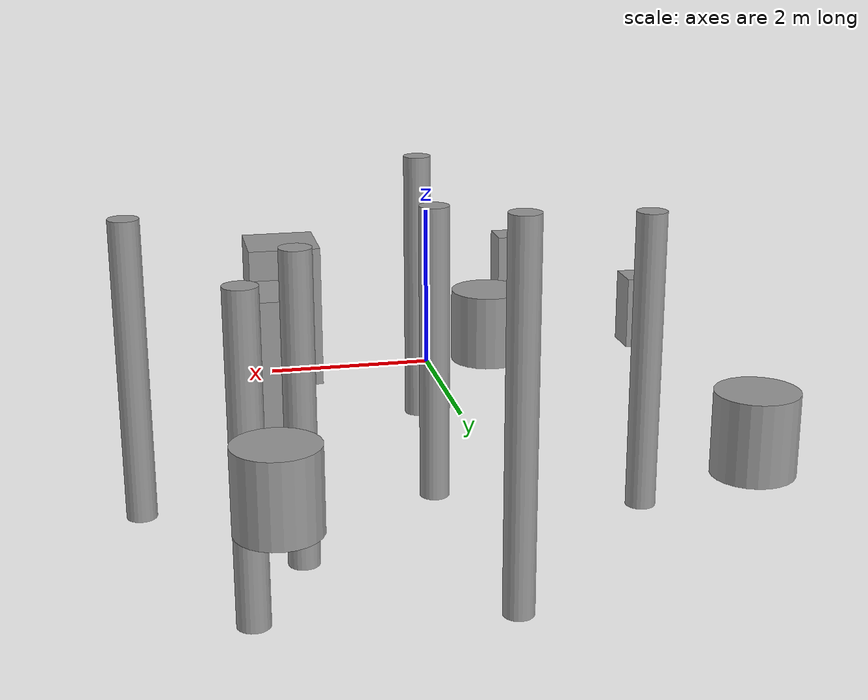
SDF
<?xml version='1.0'?>
<sdf version='1.6'>
  <model name='world3_models'>
    <link name='link_0'>
      <inertial>
        <mass>1</mass>
        <inertia>
          <ixx>0.166667</ixx>
          <ixy>0</ixy>
          <ixz>0</ixz>
          <iyy>0.166667</iyy>
          <iyz>0</iyz>
          <izz>0.166667</izz>
        </inertia>
        <pose frame=''>0 0 0 0 -0 0</pose>
      </inertial>
      <pose frame=''>2.03762 -0.209703 0 0 -0 0</pose>
      <gravity>1</gravity>
      <self_collide>0</self_collide>
      <kinematic>0</kinematic>
      <enable_wind>0</enable_wind>
      <visual name='visual'>
        <pose frame=''>0 0 0 0 -0 0</pose>
        <geometry>
          <box>
            <size>1 1 2</size>
          </box>
        </geometry>
        <material>
          <lighting>1</lighting>
          <script>
            <uri>file://media/materials/scripts/gazebo.material</uri>
            <name>Gazebo/Grey</name>
          </script>
          <shader type='pixel'>
            <normal_map>__default__</normal_map>
          </shader>
          <ambient>0.3 0.3 0.3 1</ambient>
          <diffuse>0.7 0.7 0.7 1</diffuse>
          <specular>0.01 0.01 0.01 1</specular>
          <emissive>0 0 0 1</emissive>
        </material>
        <transparency>0</transparency>
        <cast_shadows>1</cast_shadows>
      </visual>
      <collision name='collision'>
        <laser_retro>0</laser_retro>
        <max_contacts>10</max_contacts>
        <pose frame=''>0 0 0 0 -0 0</pose>
        <geometry>
          <box>
            <size>1 1 2</size>
          </box>
        </geometry>
        <surface>
          <friction>
            <ode>
              <mu>1</mu>
              <mu2>1</mu2>
              <fdir1>0 0 0</fdir1>
              <slip1>0</slip1>
              <slip2>0</slip2>
            </ode>
            <torsional>
              <coefficient>1</coefficient>
              <patch_radius>0</patch_radius>
              <surface_radius>0</surface_radius>
              <use_patch_radius>1</use_patch_radius>
              <ode>
                <slip>0</slip>
              </ode>
            </torsional>
          </friction>
          <bounce>
            <restitution_coefficient>0</restitution_coefficient>
            <threshold>1e+06</threshold>
          </bounce>
          <contact>
            <collide_without_contact>0</collide_without_contact>
            <collide_without_contact_bitmask>1</collide_without_contact_bitmask>
            <collide_bitmask>1</collide_bitmask>
            <ode>
              <soft_cfm>0</soft_cfm>
              <soft_erp>0.2</soft_erp>
              <kp>1e+13</kp>
              <kd>1</kd>
              <max_vel>0.01</max_vel>
              <min_depth>0</min_depth>
            </ode>
            <bullet>
              <split_impulse>1</split_impulse>
              <split_impulse_penetration_threshold>-0.01</split_impulse_penetration_threshold>
              <soft_cfm>0</soft_cfm>
              <soft_erp>0.2</soft_erp>
              <kp>1e+13</kp>
              <kd>1</kd>
            </bullet>
          </contact>
        </surface>
      </collision>
    </link>
    <link name='link_0_clone'>
      <inertial>
        <mass>1</mass>
        <inertia>
          <ixx>0.166667</ixx>
          <ixy>0</ixy>
          <ixz>0</ixz>
          <iyy>0.166667</iyy>
          <iyz>0</iyz>
          <izz>0.166667</izz>
        </inertia>
        <pose frame=''>0 0 0 0 -0 0</pose>
      </inertial>
      <pose frame=''>1.56831 -2.71554 0 0 -0 0</pose>
      <gravity>1</gravity>
      <self_collide>0</self_collide>
      <kinematic>0</kinematic>
      <enable_wind>0</enable_wind>
      <visual name='visual'>
        <pose frame=''>0 0 0 0 -0 0</pose>
        <geometry>
          <box>
            <size>1 1 2</size>
          </box>
        </geometry>
        <material>
          <lighting>1</lighting>
          <script>
            <uri>file://media/materials/scripts/gazebo.material</uri>
            <name>Gazebo/Grey</name>
          </script>
          <shader type='pixel'>
            <normal_map>__default__</normal_map>
          </shader>
          <ambient>0.3 0.3 0.3 1</ambient>
          <diffuse>0.7 0.7 0.7 1</diffuse>
          <specular>0.01 0.01 0.01 1</specular>
          <emissive>0 0 0 1</emissive>
        </material>
        <transparency>0</transparency>
        <cast_shadows>1</cast_shadows>
      </visual>
      <collision name='collision'>
        <laser_retro>0</laser_retro>
        <max_contacts>10</max_contacts>
        <pose frame=''>0 0 0 0 -0 0</pose>
        <geometry>
          <box>
            <size>1 1 2</size>
          </box>
        </geometry>
        <surface>
          <friction>
            <ode>
              <mu>1</mu>
              <mu2>1</mu2>
              <fdir1>0 0 0</fdir1>
              <slip1>0</slip1>
              <slip2>0</slip2>
            </ode>
            <torsional>
              <coefficient>1</coefficient>
              <patch_radius>0</patch_radius>
              <surface_radius>0</surface_radius>
              <use_patch_radius>1</use_patch_radius>
              <ode>
                <slip>0</slip>
              </ode>
            </torsional>
          </friction>
          <bounce>
            <restitution_coefficient>0</restitution_coefficient>
            <threshold>1e+06</threshold>
          </bounce>
          <contact>
            <collide_without_contact>0</collide_without_contact>
            <collide_without_contact_bitmask>1</collide_without_contact_bitmask>
            <collide_bitmask>1</collide_bitmask>
            <ode>
              <soft_cfm>0</soft_cfm>
              <soft_erp>0.2</soft_erp>
              <kp>1e+13</kp>
              <kd>1</kd>
              <max_vel>0.01</max_vel>
              <min_depth>0</min_depth>
            </ode>
            <bullet>
              <split_impulse>1</split_impulse>
              <split_impulse_penetration_threshold>-0.01</split_impulse_penetration_threshold>
              <soft_cfm>0</soft_cfm>
              <soft_erp>0.2</soft_erp>
              <kp>1e+13</kp>
              <kd>1</kd>
            </bullet>
          </contact>
        </surface>
      </collision>
    </link>
    <link name='link_1'>
      <inertial>
        <mass>1</mass>
        <inertia>
          <ixx>0.145833</ixx>
          <ixy>0</ixy>
          <ixz>0</ixz>
          <iyy>0.145833</iyy>
          <iyz>0</iyz>
          <izz>0.125</izz>
        </inertia>
      </inertial>
      <pose frame=''>2.36446 3.79032 0 0 -0 0</pose>
      <visual name='visual'>
        <pose frame=''>0 0 0 0 -0 0</pose>
        <geometry>
          <cylinder>
            <radius>0.5</radius>
            <length>1</length>
          </cylinder>
        </geometry>
        <material>
          <lighting>1</lighting>
          <script>
            <uri>file://media/materials/scripts/gazebo.material</uri>
            <name>Gazebo/Grey</name>
          </script>
          <shader type='pixel'/>
        </material>
        <transparency>0</transparency>
        <cast_shadows>1</cast_shadows>
      </visual>
      <collision name='collision'>
        <laser_retro>0</laser_retro>
        <max_contacts>10</max_contacts>
        <pose frame=''>0 0 0 0 -0 0</pose>
        <geometry>
          <cylinder>
            <radius>0.5</radius>
            <length>1</length>
          </cylinder>
        </geometry>
        <surface>
          <friction>
            <ode>
              <mu>1</mu>
              <mu2>1</mu2>
              <fdir1>0 0 0</fdir1>
              <slip1>0</slip1>
              <slip2>0</slip2>
            </ode>
            <torsional>
              <coefficient>1</coefficient>
              <patch_radius>0</patch_radius>
              <surface_radius>0</surface_radius>
              <use_patch_radius>1</use_patch_radius>
              <ode>
                <slip>0</slip>
              </ode>
            </torsional>
          </friction>
          <bounce>
            <restitution_coefficient>0</restitution_coefficient>
            <threshold>1e+06</threshold>
          </bounce>
          <contact>
            <collide_without_contact>0</collide_without_contact>
            <collide_without_contact_bitmask>1</collide_without_contact_bitmask>
            <collide_bitmask>1</collide_bitmask>
            <ode>
              <soft_cfm>0</soft_cfm>
              <soft_erp>0.2</soft_erp>
              <kp>1e+13</kp>
              <kd>1</kd>
              <max_vel>0.01</max_vel>
              <min_depth>0</min_depth>
            </ode>
            <bullet>
              <split_impulse>1</split_impulse>
              <split_impulse_penetration_threshold>-0.01</split_impulse_penetration_threshold>
              <soft_cfm>0</soft_cfm>
              <soft_erp>0.2</soft_erp>
              <kp>1e+13</kp>
              <kd>1</kd>
            </bullet>
          </contact>
        </surface>
      </collision>
    </link>
    <link name='link_2'>
      <inertial>
        <mass>1</mass>
        <inertia>
          <ixx>0.166667</ixx>
          <ixy>0</ixy>
          <ixz>0</ixz>
          <iyy>0.166667</iyy>
          <iyz>0</iyz>
          <izz>0.166667</izz>
        </inertia>
        <pose frame=''>0 0 0 0 -0 0</pose>
      </inertial>
      <pose frame=''>-3.46569 -1.7273 0 0 -0 0</pose>
      <gravity>1</gravity>
      <self_collide>0</self_collide>
      <kinematic>0</kinematic>
      <enable_wind>0</enable_wind>
      <visual name='visual'>
        <pose frame=''>0 0 0 0 -0 0</pose>
        <geometry>
          <box>
            <size>0.5 0.5 1</size>
          </box>
        </geometry>
        <material>
          <lighting>1</lighting>
          <script>
            <uri>file://media/materials/scripts/gazebo.material</uri>
            <name>Gazebo/Grey</name>
          </script>
          <shader type='pixel'>
            <normal_map>__default__</normal_map>
          </shader>
          <ambient>0.3 0.3 0.3 1</ambient>
          <diffuse>0.7 0.7 0.7 1</diffuse>
          <specular>0.01 0.01 0.01 1</specular>
          <emissive>0 0 0 1</emissive>
        </material>
        <transparency>0</transparency>
        <cast_shadows>1</cast_shadows>
      </visual>
      <collision name='collision'>
        <laser_retro>0</laser_retro>
        <max_contacts>10</max_contacts>
        <pose frame=''>0 0 0 0 -0 0</pose>
        <geometry>
          <box>
            <size>0.5 0.5 1</size>
          </box>
        </geometry>
        <surface>
          <friction>
            <ode>
              <mu>1</mu>
              <mu2>1</mu2>
              <fdir1>0 0 0</fdir1>
              <slip1>0</slip1>
              <slip2>0</slip2>
            </ode>
            <torsional>
              <coefficient>1</coefficient>
              <patch_radius>0</patch_radius>
              <surface_radius>0</surface_radius>
              <use_patch_radius>1</use_patch_radius>
              <ode>
                <slip>0</slip>
              </ode>
            </torsional>
          </friction>
          <bounce>
            <restitution_coefficient>0</restitution_coefficient>
            <threshold>1e+06</threshold>
          </bounce>
          <contact>
            <collide_without_contact>0</collide_without_contact>
            <collide_without_contact_bitmask>1</collide_without_contact_bitmask>
            <collide_bitmask>1</collide_bitmask>
            <ode>
              <soft_cfm>0</soft_cfm>
              <soft_erp>0.2</soft_erp>
              <kp>1e+13</kp>
              <kd>1</kd>
              <max_vel>0.01</max_vel>
              <min_depth>0</min_depth>
            </ode>
            <bullet>
              <split_impulse>1</split_impulse>
              <split_impulse_penetration_threshold>-0.01</split_impulse_penetration_threshold>
              <soft_cfm>0</soft_cfm>
              <soft_erp>0.2</soft_erp>
              <kp>1e+13</kp>
              <kd>1</kd>
            </bullet>
          </contact>
        </surface>
      </collision>
    </link>
    <link name='link_2_clone'>
      <inertial>
        <mass>1</mass>
        <inertia>
          <ixx>0.166667</ixx>
          <ixy>0</ixy>
          <ixz>0</ixz>
          <iyy>0.166667</iyy>
          <iyz>0</iyz>
          <izz>0.166667</izz>
        </inertia>
        <pose frame=''>0 0 0 0 -0 0</pose>
      </inertial>
      <pose frame=''>-2.24781 -4.44688 0 0 -0 0</pose>
      <gravity>1</gravity>
      <self_collide>0</self_collide>
      <kinematic>0</kinematic>
      <enable_wind>0</enable_wind>
      <visual name='visual'>
        <pose frame=''>0 0 0 0 -0 0</pose>
        <geometry>
          <box>
            <size>0.5 0.5 1</size>
          </box>
        </geometry>
        <material>
          <lighting>1</lighting>
          <script>
            <uri>file://media/materials/scripts/gazebo.material</uri>
            <name>Gazebo/Grey</name>
          </script>
          <shader type='pixel'>
            <normal_map>__default__</normal_map>
          </shader>
          <ambient>0.3 0.3 0.3 1</ambient>
          <diffuse>0.7 0.7 0.7 1</diffuse>
          <specular>0.01 0.01 0.01 1</specular>
          <emissive>0 0 0 1</emissive>
        </material>
        <transparency>0</transparency>
        <cast_shadows>1</cast_shadows>
      </visual>
      <collision name='collision'>
        <laser_retro>0</laser_retro>
        <max_contacts>10</max_contacts>
        <pose frame=''>0 0 0 0 -0 0</pose>
        <geometry>
          <box>
            <size>0.5 0.5 1</size>
          </box>
        </geometry>
        <surface>
          <friction>
            <ode>
              <mu>1</mu>
              <mu2>1</mu2>
              <fdir1>0 0 0</fdir1>
              <slip1>0</slip1>
              <slip2>0</slip2>
            </ode>
            <torsional>
              <coefficient>1</coefficient>
              <patch_radius>0</patch_radius>
              <surface_radius>0</surface_radius>
              <use_patch_radius>1</use_patch_radius>
              <ode>
                <slip>0</slip>
              </ode>
            </torsional>
          </friction>
          <bounce>
            <restitution_coefficient>0</restitution_coefficient>
            <threshold>1e+06</threshold>
          </bounce>
          <contact>
            <collide_without_contact>0</collide_without_contact>
            <collide_without_contact_bitmask>1</collide_without_contact_bitmask>
            <collide_bitmask>1</collide_bitmask>
            <ode>
              <soft_cfm>0</soft_cfm>
              <soft_erp>0.2</soft_erp>
              <kp>1e+13</kp>
              <kd>1</kd>
              <max_vel>0.01</max_vel>
              <min_depth>0</min_depth>
            </ode>
            <bullet>
              <split_impulse>1</split_impulse>
              <split_impulse_penetration_threshold>-0.01</split_impulse_penetration_threshold>
              <soft_cfm>0</soft_cfm>
              <soft_erp>0.2</soft_erp>
              <kp>1e+13</kp>
              <kd>1</kd>
            </bullet>
          </contact>
        </surface>
      </collision>
    </link>
    <link name='link_3'>
      <inertial>
        <mass>1</mass>
        <inertia>
          <ixx>0.145833</ixx>
          <ixy>0</ixy>
          <ixz>0</ixz>
          <iyy>0.145833</iyy>
          <iyz>0</iyz>
          <izz>0.125</izz>
        </inertia>
        <pose frame=''>0 0 0 0 -0 0</pose>
      </inertial>
      <pose frame=''>-0.643323 2.40713 0 0 -0 0</pose>
      <gravity>1</gravity>
      <self_collide>0</self_collide>
      <kinematic>0</kinematic>
      <enable_wind>0</enable_wind>
      <visual name='visual'>
        <pose frame=''>0 0 0 0 -0 0</pose>
        <geometry>
          <cylinder>
            <radius>0.2</radius>
            <length>5</length>
          </cylinder>
        </geometry>
        <material>
          <lighting>1</lighting>
          <script>
            <uri>file://media/materials/scripts/gazebo.material</uri>
            <name>Gazebo/Grey</name>
          </script>
          <shader type='pixel'>
            <normal_map>__default__</normal_map>
          </shader>
          <ambient>0.3 0.3 0.3 1</ambient>
          <diffuse>0.7 0.7 0.7 1</diffuse>
          <specular>0.01 0.01 0.01 1</specular>
          <emissive>0 0 0 1</emissive>
        </material>
        <transparency>0</transparency>
        <cast_shadows>1</cast_shadows>
      </visual>
      <collision name='collision'>
        <laser_retro>0</laser_retro>
        <max_contacts>10</max_contacts>
        <pose frame=''>0 0 0 0 -0 0</pose>
        <geometry>
          <cylinder>
            <radius>0.2</radius>
            <length>5</length>
          </cylinder>
        </geometry>
        <surface>
          <friction>
            <ode>
              <mu>1</mu>
              <mu2>1</mu2>
              <fdir1>0 0 0</fdir1>
              <slip1>0</slip1>
              <slip2>0</slip2>
            </ode>
            <torsional>
              <coefficient>1</coefficient>
              <patch_radius>0</patch_radius>
              <surface_radius>0</surface_radius>
              <use_patch_radius>1</use_patch_radius>
              <ode>
                <slip>0</slip>
              </ode>
            </torsional>
          </friction>
          <bounce>
            <restitution_coefficient>0</restitution_coefficient>
            <threshold>1e+06</threshold>
          </bounce>
          <contact>
            <collide_without_contact>0</collide_without_contact>
            <collide_without_contact_bitmask>1</collide_without_contact_bitmask>
            <collide_bitmask>1</collide_bitmask>
            <ode>
              <soft_cfm>0</soft_cfm>
              <soft_erp>0.2</soft_erp>
              <kp>1e+13</kp>
              <kd>1</kd>
              <max_vel>0.01</max_vel>
              <min_depth>0</min_depth>
            </ode>
            <bullet>
              <split_impulse>1</split_impulse>
              <split_impulse_penetration_threshold>-0.01</split_impulse_penetration_threshold>
              <soft_cfm>0</soft_cfm>
              <soft_erp>0.2</soft_erp>
              <kp>1e+13</kp>
              <kd>1</kd>
            </bullet>
          </contact>
        </surface>
      </collision>
    </link>
    <link name='link_4'>
      <inertial>
        <mass>1</mass>
        <inertia>
          <ixx>0.145833</ixx>
          <ixy>0</ixy>
          <ixz>0</ixz>
          <iyy>0.145833</iyy>
          <iyz>0</iyz>
          <izz>0.125</izz>
        </inertia>
        <pose frame=''>0 0 0 0 -0 0</pose>
      </inertial>
      <pose frame=''>1.84352 1.49813 0 0 -0 0</pose>
      <gravity>1</gravity>
      <self_collide>0</self_collide>
      <kinematic>0</kinematic>
      <enable_wind>0</enable_wind>
      <visual name='visual'>
        <pose frame=''>0 0 0 0 -0 0</pose>
        <geometry>
          <cylinder>
            <radius>0.2</radius>
            <length>4</length>
          </cylinder>
        </geometry>
        <material>
          <lighting>1</lighting>
          <script>
            <uri>file://media/materials/scripts/gazebo.material</uri>
            <name>Gazebo/Grey</name>
          </script>
          <shader type='pixel'>
            <normal_map>__default__</normal_map>
          </shader>
          <ambient>0.3 0.3 0.3 1</ambient>
          <diffuse>0.7 0.7 0.7 1</diffuse>
          <specular>0.01 0.01 0.01 1</specular>
          <emissive>0 0 0 1</emissive>
        </material>
        <transparency>0</transparency>
        <cast_shadows>1</cast_shadows>
      </visual>
      <collision name='collision'>
        <laser_retro>0</laser_retro>
        <max_contacts>10</max_contacts>
        <pose frame=''>0 0 0 0 -0 0</pose>
        <geometry>
          <cylinder>
            <radius>0.2</radius>
            <length>4</length>
          </cylinder>
        </geometry>
        <surface>
          <friction>
            <ode>
              <mu>1</mu>
              <mu2>1</mu2>
              <fdir1>0 0 0</fdir1>
              <slip1>0</slip1>
              <slip2>0</slip2>
            </ode>
            <torsional>
              <coefficient>1</coefficient>
              <patch_radius>0</patch_radius>
              <surface_radius>0</surface_radius>
              <use_patch_radius>1</use_patch_radius>
              <ode>
                <slip>0</slip>
              </ode>
            </torsional>
          </friction>
          <bounce>
            <restitution_coefficient>0</restitution_coefficient>
            <threshold>1e+06</threshold>
          </bounce>
          <contact>
            <collide_without_contact>0</collide_without_contact>
            <collide_without_contact_bitmask>1</collide_without_contact_bitmask>
            <collide_bitmask>1</collide_bitmask>
            <ode>
              <soft_cfm>0</soft_cfm>
              <soft_erp>0.2</soft_erp>
              <kp>1e+13</kp>
              <kd>1</kd>
              <max_vel>0.01</max_vel>
              <min_depth>0</min_depth>
            </ode>
            <bullet>
              <split_impulse>1</split_impulse>
              <split_impulse_penetration_threshold>-0.01</split_impulse_penetration_threshold>
              <soft_cfm>0</soft_cfm>
              <soft_erp>0.2</soft_erp>
              <kp>1e+13</kp>
              <kd>1</kd>
            </bullet>
          </contact>
        </surface>
      </collision>
    </link>
    <link name='link_4_clone'>
      <inertial>
        <mass>1</mass>
        <inertia>
          <ixx>0.145833</ixx>
          <ixy>0</ixy>
          <ixz>0</ixz>
          <iyy>0.145833</iyy>
          <iyz>0</iyz>
          <izz>0.125</izz>
        </inertia>
        <pose frame=''>0 0 0 0 -0 0</pose>
      </inertial>
      <pose frame=''>3.74918 -0.332965 0 0 -0 0</pose>
      <gravity>1</gravity>
      <self_collide>0</self_collide>
      <kinematic>0</kinematic>
      <enable_wind>0</enable_wind>
      <visual name='visual'>
        <pose frame=''>0 0 0 0 -0 0</pose>
        <geometry>
          <cylinder>
            <radius>0.2</radius>
            <length>4</length>
          </cylinder>
        </geometry>
        <material>
          <lighting>1</lighting>
          <script>
            <uri>file://media/materials/scripts/gazebo.material</uri>
            <name>Gazebo/Grey</name>
          </script>
          <shader type='pixel'>
            <normal_map>__default__</normal_map>
          </shader>
          <ambient>0.3 0.3 0.3 1</ambient>
          <diffuse>0.7 0.7 0.7 1</diffuse>
          <specular>0.01 0.01 0.01 1</specular>
          <emissive>0 0 0 1</emissive>
        </material>
        <transparency>0</transparency>
        <cast_shadows>1</cast_shadows>
      </visual>
      <collision name='collision'>
        <laser_retro>0</laser_retro>
        <max_contacts>10</max_contacts>
        <pose frame=''>0 0 0 0 -0 0</pose>
        <geometry>
          <cylinder>
            <radius>0.2</radius>
            <length>4</length>
          </cylinder>
        </geometry>
        <surface>
          <friction>
            <ode>
              <mu>1</mu>
              <mu2>1</mu2>
              <fdir1>0 0 0</fdir1>
              <slip1>0</slip1>
              <slip2>0</slip2>
            </ode>
            <torsional>
              <coefficient>1</coefficient>
              <patch_radius>0</patch_radius>
              <surface_radius>0</surface_radius>
              <use_patch_radius>1</use_patch_radius>
              <ode>
                <slip>0</slip>
              </ode>
            </torsional>
          </friction>
          <bounce>
            <restitution_coefficient>0</restitution_coefficient>
            <threshold>1e+06</threshold>
          </bounce>
          <contact>
            <collide_without_contact>0</collide_without_contact>
            <collide_without_contact_bitmask>1</collide_without_contact_bitmask>
            <collide_bitmask>1</collide_bitmask>
            <ode>
              <soft_cfm>0</soft_cfm>
              <soft_erp>0.2</soft_erp>
              <kp>1e+13</kp>
              <kd>1</kd>
              <max_vel>0.01</max_vel>
              <min_depth>0</min_depth>
            </ode>
            <bullet>
              <split_impulse>1</split_impulse>
              <split_impulse_penetration_threshold>-0.01</split_impulse_penetration_threshold>
              <soft_cfm>0</soft_cfm>
              <soft_erp>0.2</soft_erp>
              <kp>1e+13</kp>
              <kd>1</kd>
            </bullet>
          </contact>
        </surface>
      </collision>
    </link>
    <link name='link_4_clone_0'>
      <inertial>
        <mass>1</mass>
        <inertia>
          <ixx>0.145833</ixx>
          <ixy>0</ixy>
          <ixz>0</ixz>
          <iyy>0.145833</iyy>
          <iyz>0</iyz>
          <izz>0.125</izz>
        </inertia>
        <pose frame=''>0 0 0 0 -0 0</pose>
      </inertial>
      <pose frame=''>-0.153038 -0.252231 0 0 -0 0</pose>
      <gravity>1</gravity>
      <self_collide>0</self_collide>
      <kinematic>0</kinematic>
      <enable_wind>0</enable_wind>
      <visual name='visual'>
        <pose frame=''>0 0 0 0 -0 0</pose>
        <geometry>
          <cylinder>
            <radius>0.2</radius>
            <length>4</length>
          </cylinder>
        </geometry>
        <material>
          <lighting>1</lighting>
          <script>
            <uri>file://media/materials/scripts/gazebo.material</uri>
            <name>Gazebo/Grey</name>
          </script>
          <shader type='pixel'>
            <normal_map>__default__</normal_map>
          </shader>
          <ambient>0.3 0.3 0.3 1</ambient>
          <diffuse>0.7 0.7 0.7 1</diffuse>
          <specular>0.01 0.01 0.01 1</specular>
          <emissive>0 0 0 1</emissive>
        </material>
        <transparency>0</transparency>
        <cast_shadows>1</cast_shadows>
      </visual>
      <collision name='collision'>
        <laser_retro>0</laser_retro>
        <max_contacts>10</max_contacts>
        <pose frame=''>0 0 0 0 -0 0</pose>
        <geometry>
          <cylinder>
            <radius>0.2</radius>
            <length>4</length>
          </cylinder>
        </geometry>
        <surface>
          <friction>
            <ode>
              <mu>1</mu>
              <mu2>1</mu2>
              <fdir1>0 0 0</fdir1>
              <slip1>0</slip1>
              <slip2>0</slip2>
            </ode>
            <torsional>
              <coefficient>1</coefficient>
              <patch_radius>0</patch_radius>
              <surface_radius>0</surface_radius>
              <use_patch_radius>1</use_patch_radius>
              <ode>
                <slip>0</slip>
              </ode>
            </torsional>
          </friction>
          <bounce>
            <restitution_coefficient>0</restitution_coefficient>
            <threshold>1e+06</threshold>
          </bounce>
          <contact>
            <collide_without_contact>0</collide_without_contact>
            <collide_without_contact_bitmask>1</collide_without_contact_bitmask>
            <collide_bitmask>1</collide_bitmask>
            <ode>
              <soft_cfm>0</soft_cfm>
              <soft_erp>0.2</soft_erp>
              <kp>1e+13</kp>
              <kd>1</kd>
              <max_vel>0.01</max_vel>
              <min_depth>0</min_depth>
            </ode>
            <bullet>
              <split_impulse>1</split_impulse>
              <split_impulse_penetration_threshold>-0.01</split_impulse_penetration_threshold>
              <soft_cfm>0</soft_cfm>
              <soft_erp>0.2</soft_erp>
              <kp>1e+13</kp>
              <kd>1</kd>
            </bullet>
          </contact>
        </surface>
      </collision>
    </link>
    <link name='link_4_clone_1'>
      <inertial>
        <mass>1</mass>
        <inertia>
          <ixx>0.145833</ixx>
          <ixy>0</ixy>
          <ixz>0</ixz>
          <iyy>0.145833</iyy>
          <iyz>0</iyz>
          <izz>0.125</izz>
        </inertia>
        <pose frame=''>0 0 0 0 -0 0</pose>
      </inertial>
      <pose frame=''>-2.77777 0.619177 0 0 -0 0</pose>
      <gravity>1</gravity>
      <self_collide>0</self_collide>
      <kinematic>0</kinematic>
      <enable_wind>0</enable_wind>
      <visual name='visual'>
        <pose frame=''>0 0 0 0 -0 0</pose>
        <geometry>
          <cylinder>
            <radius>0.2</radius>
            <length>4</length>
          </cylinder>
        </geometry>
        <material>
          <lighting>1</lighting>
          <script>
            <uri>file://media/materials/scripts/gazebo.material</uri>
            <name>Gazebo/Grey</name>
          </script>
          <shader type='pixel'>
            <normal_map>__default__</normal_map>
          </shader>
          <ambient>0.3 0.3 0.3 1</ambient>
          <diffuse>0.7 0.7 0.7 1</diffuse>
          <specular>0.01 0.01 0.01 1</specular>
          <emissive>0 0 0 1</emissive>
        </material>
        <transparency>0</transparency>
        <cast_shadows>1</cast_shadows>
      </visual>
      <collision name='collision'>
        <laser_retro>0</laser_retro>
        <max_contacts>10</max_contacts>
        <pose frame=''>0 0 0 0 -0 0</pose>
        <geometry>
          <cylinder>
            <radius>0.2</radius>
            <length>4</length>
          </cylinder>
        </geometry>
        <surface>
          <friction>
            <ode>
              <mu>1</mu>
              <mu2>1</mu2>
              <fdir1>0 0 0</fdir1>
              <slip1>0</slip1>
              <slip2>0</slip2>
            </ode>
            <torsional>
              <coefficient>1</coefficient>
              <patch_radius>0</patch_radius>
              <surface_radius>0</surface_radius>
              <use_patch_radius>1</use_patch_radius>
              <ode>
                <slip>0</slip>
              </ode>
            </torsional>
          </friction>
          <bounce>
            <restitution_coefficient>0</restitution_coefficient>
            <threshold>1e+06</threshold>
          </bounce>
          <contact>
            <collide_without_contact>0</collide_without_contact>
            <collide_without_contact_bitmask>1</collide_without_contact_bitmask>
            <collide_bitmask>1</collide_bitmask>
            <ode>
              <soft_cfm>0</soft_cfm>
              <soft_erp>0.2</soft_erp>
              <kp>1e+13</kp>
              <kd>1</kd>
              <max_vel>0.01</max_vel>
              <min_depth>0</min_depth>
            </ode>
            <bullet>
              <split_impulse>1</split_impulse>
              <split_impulse_penetration_threshold>-0.01</split_impulse_penetration_threshold>
              <soft_cfm>0</soft_cfm>
              <soft_erp>0.2</soft_erp>
              <kp>1e+13</kp>
              <kd>1</kd>
            </bullet>
          </contact>
        </surface>
      </collision>
    </link>
    <link name='link_4_clone_2'>
      <inertial>
        <mass>1</mass>
        <inertia>
          <ixx>0.145833</ixx>
          <ixy>0</ixy>
          <ixz>0</ixz>
          <iyy>0.145833</iyy>
          <iyz>0</iyz>
          <izz>0.125</izz>
        </inertia>
        <pose frame=''>0 0 0 0 -0 0</pose>
      </inertial>
      <pose frame=''>-0.559921 -3.47003 0 0 -0 0</pose>
      <gravity>1</gravity>
      <self_collide>0</self_collide>
      <kinematic>0</kinematic>
      <enable_wind>0</enable_wind>
      <visual name='visual'>
        <pose frame=''>0 0 0 0 -0 0</pose>
        <geometry>
          <cylinder>
            <radius>0.2</radius>
            <length>4</length>
          </cylinder>
        </geometry>
        <material>
          <lighting>1</lighting>
          <script>
            <uri>file://media/materials/scripts/gazebo.material</uri>
            <name>Gazebo/Grey</name>
          </script>
          <shader type='pixel'>
            <normal_map>__default__</normal_map>
          </shader>
          <ambient>0.3 0.3 0.3 1</ambient>
          <diffuse>0.7 0.7 0.7 1</diffuse>
          <specular>0.01 0.01 0.01 1</specular>
          <emissive>0 0 0 1</emissive>
        </material>
        <transparency>0</transparency>
        <cast_shadows>1</cast_shadows>
      </visual>
      <collision name='collision'>
        <laser_retro>0</laser_retro>
        <max_contacts>10</max_contacts>
        <pose frame=''>0 0 0 0 -0 0</pose>
        <geometry>
          <cylinder>
            <radius>0.2</radius>
            <length>4</length>
          </cylinder>
        </geometry>
        <surface>
          <friction>
            <ode>
              <mu>1</mu>
              <mu2>1</mu2>
              <fdir1>0 0 0</fdir1>
              <slip1>0</slip1>
              <slip2>0</slip2>
            </ode>
            <torsional>
              <coefficient>1</coefficient>
              <patch_radius>0</patch_radius>
              <surface_radius>0</surface_radius>
              <use_patch_radius>1</use_patch_radius>
              <ode>
                <slip>0</slip>
              </ode>
            </torsional>
          </friction>
          <bounce>
            <restitution_coefficient>0</restitution_coefficient>
            <threshold>1e+06</threshold>
          </bounce>
          <contact>
            <collide_without_contact>0</collide_without_contact>
            <collide_without_contact_bitmask>1</collide_without_contact_bitmask>
            <collide_bitmask>1</collide_bitmask>
            <ode>
              <soft_cfm>0</soft_cfm>
              <soft_erp>0.2</soft_erp>
              <kp>1e+13</kp>
              <kd>1</kd>
              <max_vel>0.01</max_vel>
              <min_depth>0</min_depth>
            </ode>
            <bullet>
              <split_impulse>1</split_impulse>
              <split_impulse_penetration_threshold>-0.01</split_impulse_penetration_threshold>
              <soft_cfm>0</soft_cfm>
              <soft_erp>0.2</soft_erp>
              <kp>1e+13</kp>
              <kd>1</kd>
            </bullet>
          </contact>
        </surface>
      </collision>
    </link>
    <link name='link_4_clone_3'>
      <inertial>
        <mass>1</mass>
        <inertia>
          <ixx>0.145833</ixx>
          <ixy>0</ixy>
          <ixz>0</ixz>
          <iyy>0.145833</iyy>
          <iyz>0</iyz>
          <izz>0.125</izz>
        </inertia>
        <pose frame=''>0 0 0 0 -0 0</pose>
      </inertial>
      <pose frame=''>2.60597 2.97966 0 0 -0 0</pose>
      <gravity>1</gravity>
      <self_collide>0</self_collide>
      <kinematic>0</kinematic>
      <enable_wind>0</enable_wind>
      <visual name='visual'>
        <pose frame=''>0 0 0 0 -0 0</pose>
        <geometry>
          <cylinder>
            <radius>0.2</radius>
            <length>4</length>
          </cylinder>
        </geometry>
        <material>
          <lighting>1</lighting>
          <script>
            <uri>file://media/materials/scripts/gazebo.material</uri>
            <name>Gazebo/Grey</name>
          </script>
          <shader type='pixel'>
            <normal_map>__default__</normal_map>
          </shader>
          <ambient>0.3 0.3 0.3 1</ambient>
          <diffuse>0.7 0.7 0.7 1</diffuse>
          <specular>0.01 0.01 0.01 1</specular>
          <emissive>0 0 0 1</emissive>
        </material>
        <transparency>0</transparency>
        <cast_shadows>1</cast_shadows>
      </visual>
      <collision name='collision'>
        <laser_retro>0</laser_retro>
        <max_contacts>10</max_contacts>
        <pose frame=''>0 0 0 0 -0 0</pose>
        <geometry>
          <cylinder>
            <radius>0.2</radius>
            <length>4</length>
          </cylinder>
        </geometry>
        <surface>
          <friction>
            <ode>
              <mu>1</mu>
              <mu2>1</mu2>
              <fdir1>0 0 0</fdir1>
              <slip1>0</slip1>
              <slip2>0</slip2>
            </ode>
            <torsional>
              <coefficient>1</coefficient>
              <patch_radius>0</patch_radius>
              <surface_radius>0</surface_radius>
              <use_patch_radius>1</use_patch_radius>
              <ode>
                <slip>0</slip>
              </ode>
            </torsional>
          </friction>
          <bounce>
            <restitution_coefficient>0</restitution_coefficient>
            <threshold>1e+06</threshold>
          </bounce>
          <contact>
            <collide_without_contact>0</collide_without_contact>
            <collide_without_contact_bitmask>1</collide_without_contact_bitmask>
            <collide_bitmask>1</collide_bitmask>
            <ode>
              <soft_cfm>0</soft_cfm>
              <soft_erp>0.2</soft_erp>
              <kp>1e+13</kp>
              <kd>1</kd>
              <max_vel>0.01</max_vel>
              <min_depth>0</min_depth>
            </ode>
            <bullet>
              <split_impulse>1</split_impulse>
              <split_impulse_penetration_threshold>-0.01</split_impulse_penetration_threshold>
              <soft_cfm>0</soft_cfm>
              <soft_erp>0.2</soft_erp>
              <kp>1e+13</kp>
              <kd>1</kd>
            </bullet>
          </contact>
        </surface>
      </collision>
    </link>
    <link name='link_5'>
      <inertial>
        <mass>1</mass>
        <inertia>
          <ixx>0.145833</ixx>
          <ixy>0</ixy>
          <ixz>0</ixz>
          <iyy>0.145833</iyy>
          <iyz>0</iyz>
          <izz>0.125</izz>
        </inertia>
      </inertial>
      <pose frame=''>-3.17226 3.28552 0 0 -0 0</pose>
      <visual name='visual'>
        <pose frame=''>0 0 0 0 -0 0</pose>
        <geometry>
          <cylinder>
            <radius>0.5</radius>
            <length>1</length>
          </cylinder>
        </geometry>
        <material>
          <lighting>1</lighting>
          <script>
            <uri>file://media/materials/scripts/gazebo.material</uri>
            <name>Gazebo/Grey</name>
          </script>
          <shader type='pixel'/>
        </material>
        <transparency>0</transparency>
        <cast_shadows>1</cast_shadows>
      </visual>
      <collision name='collision'>
        <laser_retro>0</laser_retro>
        <max_contacts>10</max_contacts>
        <pose frame=''>0 0 0 0 -0 0</pose>
        <geometry>
          <cylinder>
            <radius>0.5</radius>
            <length>1</length>
          </cylinder>
        </geometry>
        <surface>
          <friction>
            <ode>
              <mu>1</mu>
              <mu2>1</mu2>
              <fdir1>0 0 0</fdir1>
              <slip1>0</slip1>
              <slip2>0</slip2>
            </ode>
            <torsional>
              <coefficient>1</coefficient>
              <patch_radius>0</patch_radius>
              <surface_radius>0</surface_radius>
              <use_patch_radius>1</use_patch_radius>
              <ode>
                <slip>0</slip>
              </ode>
            </torsional>
          </friction>
          <bounce>
            <restitution_coefficient>0</restitution_coefficient>
            <threshold>1e+06</threshold>
          </bounce>
          <contact>
            <collide_without_contact>0</collide_without_contact>
            <collide_without_contact_bitmask>1</collide_without_contact_bitmask>
            <collide_bitmask>1</collide_bitmask>
            <ode>
              <soft_cfm>0</soft_cfm>
              <soft_erp>0.2</soft_erp>
              <kp>1e+13</kp>
              <kd>1</kd>
              <max_vel>0.01</max_vel>
              <min_depth>0</min_depth>
            </ode>
            <bullet>
              <split_impulse>1</split_impulse>
              <split_impulse_penetration_threshold>-0.01</split_impulse_penetration_threshold>
              <soft_cfm>0</soft_cfm>
              <soft_erp>0.2</soft_erp>
              <kp>1e+13</kp>
              <kd>1</kd>
            </bullet>
          </contact>
        </surface>
      </collision>
    </link>
    <link name='link_6'>
      <inertial>
        <mass>1</mass>
        <inertia>
          <ixx>0.145833</ixx>
          <ixy>0</ixy>
          <ixz>0</ixz>
          <iyy>0.145833</iyy>
          <iyz>0</iyz>
          <izz>0.125</izz>
        </inertia>
      </inertial>
      <pose frame=''>-1.14924 -1.42531 0 0 -0 0</pose>
      <visual name='visual'>
        <pose frame=''>0 0 0 0 -0 0</pose>
        <geometry>
          <cylinder>
            <radius>0.5</radius>
            <length>1</length>
          </cylinder>
        </geometry>
        <material>
          <lighting>1</lighting>
          <script>
            <uri>file://media/materials/scripts/gazebo.material</uri>
            <name>Gazebo/Grey</name>
          </script>
          <shader type='pixel'/>
        </material>
        <transparency>0</transparency>
        <cast_shadows>1</cast_shadows>
      </visual>
      <collision name='collision'>
        <laser_retro>0</laser_retro>
        <max_contacts>10</max_contacts>
        <pose frame=''>0 0 0 0 -0 0</pose>
        <geometry>
          <cylinder>
            <radius>0.5</radius>
            <length>1</length>
          </cylinder>
        </geometry>
        <surface>
          <friction>
            <ode>
              <mu>1</mu>
              <mu2>1</mu2>
              <fdir1>0 0 0</fdir1>
              <slip1>0</slip1>
              <slip2>0</slip2>
            </ode>
            <torsional>
              <coefficient>1</coefficient>
              <patch_radius>0</patch_radius>
              <surface_radius>0</surface_radius>
              <use_patch_radius>1</use_patch_radius>
              <ode>
                <slip>0</slip>
              </ode>
            </torsional>
          </friction>
          <bounce>
            <restitution_coefficient>0</restitution_coefficient>
            <threshold>1e+06</threshold>
          </bounce>
          <contact>
            <collide_without_contact>0</collide_without_contact>
            <collide_without_contact_bitmask>1</collide_without_contact_bitmask>
            <collide_bitmask>1</collide_bitmask>
            <ode>
              <soft_cfm>0</soft_cfm>
              <soft_erp>0.2</soft_erp>
              <kp>1e+13</kp>
              <kd>1</kd>
              <max_vel>0.01</max_vel>
              <min_depth>0</min_depth>
            </ode>
            <bullet>
              <split_impulse>1</split_impulse>
              <split_impulse_penetration_threshold>-0.01</split_impulse_penetration_threshold>
              <soft_cfm>0</soft_cfm>
              <soft_erp>0.2</soft_erp>
              <kp>1e+13</kp>
              <kd>1</kd>
            </bullet>
          </contact>
        </surface>
      </collision>
    </link>
    <static>0</static>
    <allow_auto_disable>1</allow_auto_disable>
  </model>
</sdf>
